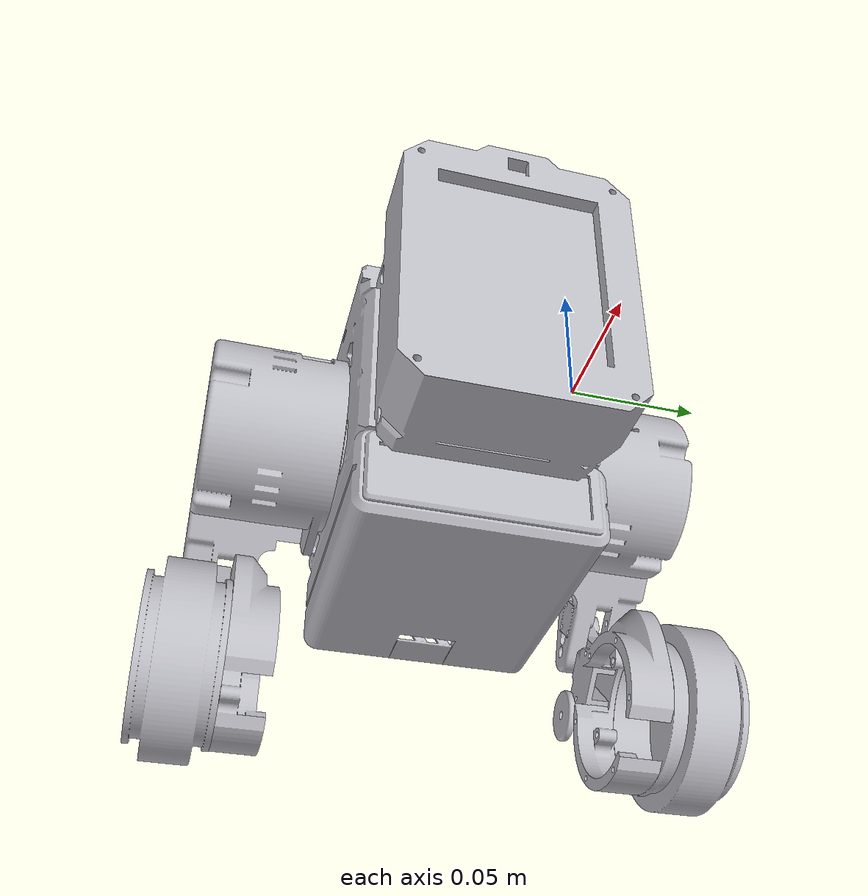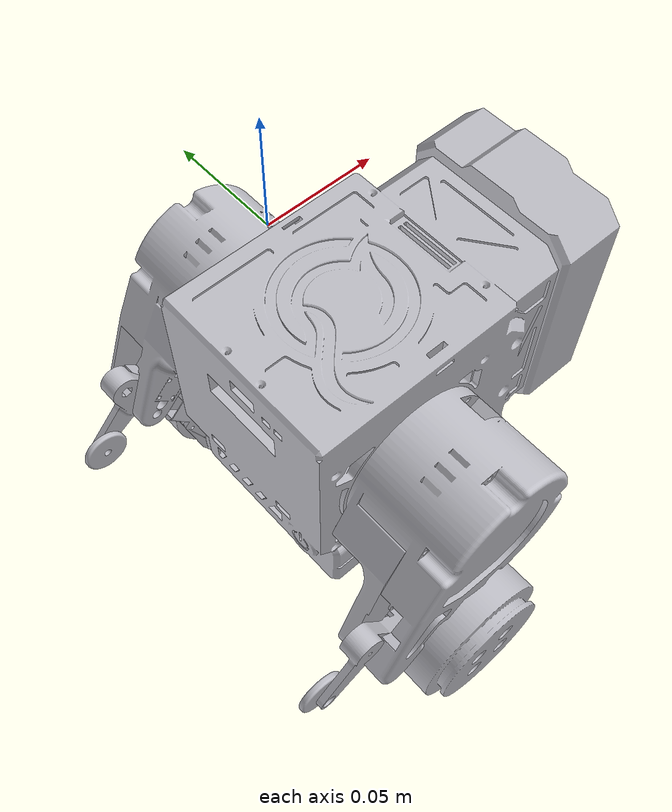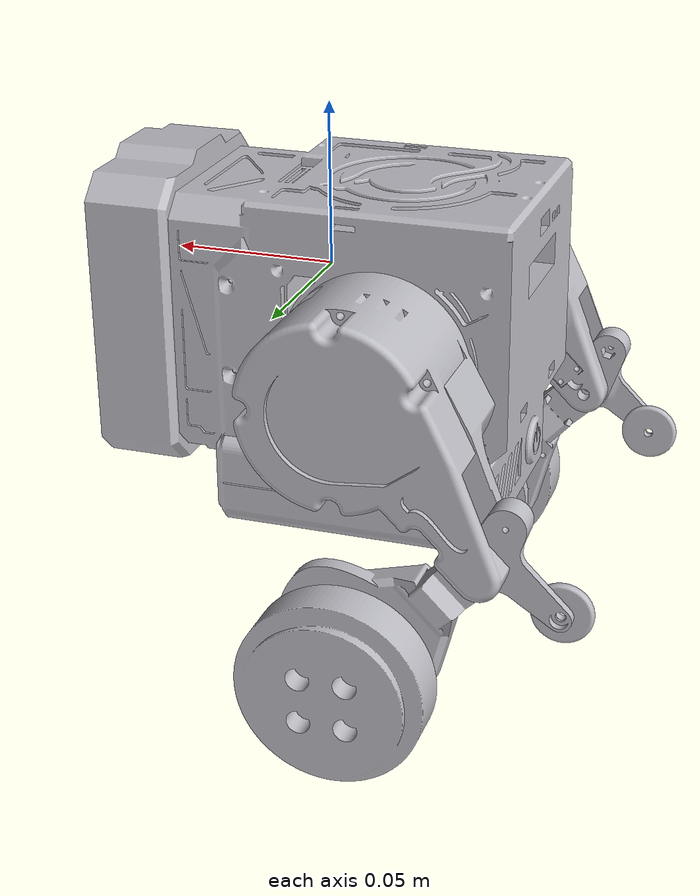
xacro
<?xml version="1.0" ?>
<robot name="urdf" xmlns:xacro="http://www.ros.org/wiki/xacro">

<xacro:include filename="$(find urdf_description)/urdf/materials.xacro" />
<xacro:include filename="$(find urdf_description)/urdf/urdf.trans" />
<xacro:include filename="$(find urdf_description)/urdf/urdf.gazebo" />
<link name="base_link">
  <inertial>
    <origin xyz="0.018646363702747377 -0.050238963083457974 -0.03448810722272746" rpy="0 0 0"/>
    <mass value="3.7060646010976246"/>
    <inertia ixx="0.006159" iyy="0.010744" izz="0.009145" ixy="3.9e-05" iyz="2.4e-05" ixz="0.000405"/>
  </inertial>
  <visual>
    <origin xyz="0 0 0" rpy="0 0 0"/>
    <geometry>
      <mesh filename="package://urdf_description/meshes/base_link.stl" scale="0.001 0.001 0.001"/>
    </geometry>
    <material name="silver"/>
  </visual>
  <collision>
    <origin xyz="0 0 0" rpy="0 0 0"/>
    <geometry>
      <mesh filename="package://urdf_description/meshes/base_link.stl" scale="0.001 0.001 0.001"/>
    </geometry>
  </collision>
</link>

<link name="right_shank_link_2">
  <inertial>
    <origin xyz="0.02726078501833474 0.001725902474211366 -0.023617590479721395" rpy="0 0 0"/>
    <mass value="0.13690405478687112"/>
    <inertia ixx="6.7e-05" iyy="0.000142" izz="8.3e-05" ixy="-1e-05" iyz="9e-06" ixz="3.9e-05"/>
  </inertial>
  <visual>
    <origin xyz="0.05692 0.118278 0.082426" rpy="0 0 0"/>
    <geometry>
      <mesh filename="package://urdf_description/meshes/right_shank_link_2.stl" scale="0.001 0.001 0.001"/>
    </geometry>
    <material name="silver"/>
  </visual>
  <collision>
    <origin xyz="0.05692 0.118278 0.082426" rpy="0 0 0"/>
    <geometry>
      <mesh filename="package://urdf_description/meshes/right_shank_link_2.stl" scale="0.001 0.001 0.001"/>
    </geometry>
  </collision>
</link>

<link name="right_idler_wheel_link_1">
  <inertial>
    <origin xyz="-1.0038416357882607e-07 0.0014996328545866106 1.4410162677003235e-07" rpy="0 0 0"/>
    <mass value="0.006977667939475657"/>
    <inertia ixx="0.0" iyy="0.0" izz="0.0" ixy="0.0" iyz="0.0" ixz="0.0"/>
  </inertial>
  <visual>
    <origin xyz="0.08032 0.120778 0.097803" rpy="0 0 0"/>
    <geometry>
      <mesh filename="package://urdf_description/meshes/right_idler_wheel_link_1.stl" scale="0.001 0.001 0.001"/>
    </geometry>
    <material name="silver"/>
  </visual>
  <collision>
    <origin xyz="0.08032 0.120778 0.097803" rpy="0 0 0"/>
    <geometry>
      <mesh filename="package://urdf_description/meshes/right_idler_wheel_link_1.stl" scale="0.001 0.001 0.001"/>
    </geometry>
  </collision>
</link>

<link name="left_thigh_link_1">
  <inertial>
    <origin xyz="-0.007841796871332999 0.02165217168425637 -0.0059609659700569015" rpy="0 0 0"/>
    <mass value="0.5276311266863356"/>
    <inertia ixx="0.000349" iyy="0.000501" izz="0.000384" ixy="1.9e-05" iyz="2.3e-05" ixz="-8.6e-05"/>
  </inertial>
  <visual>
    <origin xyz="0.010958 0.009778 0.036464" rpy="0 0 0"/>
    <geometry>
      <mesh filename="package://urdf_description/meshes/left_thigh_link_1.stl" scale="0.001 0.001 0.001"/>
    </geometry>
    <material name="silver"/>
  </visual>
  <collision>
    <origin xyz="0.010958 0.009778 0.036464" rpy="0 0 0"/>
    <geometry>
      <mesh filename="package://urdf_description/meshes/left_thigh_link_1.stl" scale="0.001 0.001 0.001"/>
    </geometry>
  </collision>
</link>

<link name="right_thigh_link_1">
  <inertial>
    <origin xyz="-0.007841714275215685 -0.02165293135789087 -0.005960949248683539" rpy="0 0 0"/>
    <mass value="0.5276303413431833"/>
    <inertia ixx="0.000349" iyy="0.000501" izz="0.000384" ixy="-1.9e-05" iyz="-2.3e-05" ixz="-8.6e-05"/>
  </inertial>
  <visual>
    <origin xyz="0.010958 0.089778 0.036464" rpy="0 0 0"/>
    <geometry>
      <mesh filename="package://urdf_description/meshes/right_thigh_link_1.stl" scale="0.001 0.001 0.001"/>
    </geometry>
    <material name="silver"/>
  </visual>
  <collision>
    <origin xyz="0.010958 0.089778 0.036464" rpy="0 0 0"/>
    <geometry>
      <mesh filename="package://urdf_description/meshes/right_thigh_link_1.stl" scale="0.001 0.001 0.001"/>
    </geometry>
  </collision>
</link>

<link name="right_wheel_link_1">
  <inertial>
    <origin xyz="-3.202629839157284e-07 -0.016535687827611528 5.3276764305776325e-08" rpy="0 0 0"/>
    <mass value="0.3218246856576583"/>
    <inertia ixx="9.8e-05" iyy="0.000175" izz="9.8e-05" ixy="-0.0" iyz="0.0" ixz="0.0"/>
  </inertial>
  <visual>
    <origin xyz="0.010958 0.120278 0.128388" rpy="0 0 0"/>
    <geometry>
      <mesh filename="package://urdf_description/meshes/right_wheel_link_1.stl" scale="0.001 0.001 0.001"/>
    </geometry>
    <material name="silver"/>
  </visual>
  <collision>
    <origin xyz="0.010958 0.120278 0.128388" rpy="0 0 0"/>
    <geometry>
      <mesh filename="package://urdf_description/meshes/right_wheel_link_1.stl" scale="0.001 0.001 0.001"/>
    </geometry>
  </collision>
</link>

<link name="left_shank_link_1">
  <inertial>
    <origin xyz="0.02726078501833793 -0.001726636765033391 -0.02361759047971776" rpy="0 0 0"/>
    <mass value="0.13690405478687123"/>
    <inertia ixx="6.7e-05" iyy="0.000142" izz="8.3e-05" ixy="1e-05" iyz="-9e-06" ixz="3.9e-05"/>
  </inertial>
  <visual>
    <origin xyz="0.05692 -0.018722 0.082426" rpy="0 0 0"/>
    <geometry>
      <mesh filename="package://urdf_description/meshes/left_shank_link_1.stl" scale="0.001 0.001 0.001"/>
    </geometry>
    <material name="silver"/>
  </visual>
  <collision>
    <origin xyz="0.05692 -0.018722 0.082426" rpy="0 0 0"/>
    <geometry>
      <mesh filename="package://urdf_description/meshes/left_shank_link_1.stl" scale="0.001 0.001 0.001"/>
    </geometry>
  </collision>
</link>

<link name="left_wheel_link_2">
  <inertial>
    <origin xyz="-3.202629778927685e-07 0.016534953536789413 5.327676680377813e-08" rpy="0 0 0"/>
    <mass value="0.3218246856576583"/>
    <inertia ixx="9.8e-05" iyy="0.000175" izz="9.8e-05" ixy="-0.0" iyz="-0.0" ixz="-0.0"/>
  </inertial>
  <visual>
    <origin xyz="0.010958 -0.020722 0.128388" rpy="0 0 0"/>
    <geometry>
      <mesh filename="package://urdf_description/meshes/left_wheel_link_2.stl" scale="0.001 0.001 0.001"/>
    </geometry>
    <material name="silver"/>
  </visual>
  <collision>
    <origin xyz="0.010958 -0.020722 0.128388" rpy="0 0 0"/>
    <geometry>
      <mesh filename="package://urdf_description/meshes/left_wheel_link_2.stl" scale="0.001 0.001 0.001"/>
    </geometry>
  </collision>
</link>

<link name="left_idler_wheel_link_2">
  <inertial>
    <origin xyz="-1.003841612612355e-07 -0.0015003671454090033 1.4410163112765773e-07" rpy="0 0 0"/>
    <mass value="0.006977667939475659"/>
    <inertia ixx="0.0" iyy="0.0" izz="0.0" ixy="0.0" iyz="0.0" ixz="0.0"/>
  </inertial>
  <visual>
    <origin xyz="0.08032 -0.021222 0.097803" rpy="0 0 0"/>
    <geometry>
      <mesh filename="package://urdf_description/meshes/left_idler_wheel_link_2.stl" scale="0.001 0.001 0.001"/>
    </geometry>
    <material name="silver"/>
  </visual>
  <collision>
    <origin xyz="0.08032 -0.021222 0.097803" rpy="0 0 0"/>
    <geometry>
      <mesh filename="package://urdf_description/meshes/left_idler_wheel_link_2.stl" scale="0.001 0.001 0.001"/>
    </geometry>
  </collision>
</link>

<joint name="right_knee_joint" type="revolute">
  <origin xyz="-0.045962 -0.0285 -0.045962" rpy="0 0 0"/>
  <parent link="right_thigh_link_1"/>
  <child link="right_shank_link_2"/>
  <axis xyz="0.0 -1.0 0.0"/>
  <limit upper="0.488692" lower="-0.436332" effort="100" velocity="100"/>
</joint>

<joint name="right_idler_wheel_joint" type="continuous">
  <origin xyz="-0.0234 -0.0025 -0.015377" rpy="0 0 0"/>
  <parent link="right_shank_link_2"/>
  <child link="right_idler_wheel_link_1"/>
  <axis xyz="-0.0 1.0 -0.0"/>
</joint>

<joint name="left_thigh_joint" type="continuous">
  <origin xyz="-0.010958 -0.009778 -0.036464" rpy="0 0 0"/>
  <parent link="base_link"/>
  <child link="left_thigh_link_1"/>
  <axis xyz="-0.0 1.0 -0.0"/>
</joint>

<joint name="right_thigh_joint" type="continuous">
  <origin xyz="-0.010958 -0.089778 -0.036464" rpy="0 0 0"/>
  <parent link="base_link"/>
  <child link="right_thigh_link_1"/>
  <axis xyz="-0.0 1.0 -0.0"/>
</joint>

<joint name="right_wheel_joint" type="continuous">
  <origin xyz="0.045962 -0.002 -0.045962" rpy="0 0 0"/>
  <parent link="right_shank_link_2"/>
  <child link="right_wheel_link_1"/>
  <axis xyz="0.0 -1.0 0.0"/>
</joint>

<joint name="left_knee_joint" type="revolute">
  <origin xyz="-0.045962 0.0285 -0.045962" rpy="0 0 0"/>
  <parent link="left_thigh_link_1"/>
  <child link="left_shank_link_1"/>
  <axis xyz="0.0 -1.0 0.0"/>
  <limit upper="0.488692" lower="-0.436332" effort="100" velocity="100"/>
</joint>

<joint name="left_wheel_joint" type="continuous">
  <origin xyz="0.045962 0.002 -0.045962" rpy="0 0 0"/>
  <parent link="left_shank_link_1"/>
  <child link="left_wheel_link_2"/>
  <axis xyz="0.0 -1.0 0.0"/>
</joint>

<joint name="left_idler_wheel_joint" type="continuous">
  <origin xyz="-0.0234 0.0025 -0.015377" rpy="0 0 0"/>
  <parent link="left_shank_link_1"/>
  <child link="left_idler_wheel_link_2"/>
  <axis xyz="-0.0 1.0 -0.0"/>
</joint>

</robot>

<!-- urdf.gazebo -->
<robot name="urdf" xmlns:xacro="http://www.ros.org/wiki/xacro" >

<xacro:property name="body_color" value="Gazebo/Silver" />

<gazebo>
  <plugin name="control" filename="libgazebo_ros_control.so"/>
</gazebo>
<gazebo reference="base_link">
  <material>${body_color}</material>
  <mu1>0.2</mu1>
  <mu2>0.2</mu2>
  <selfCollide>true</selfCollide>
  <gravity>true</gravity>
</gazebo>

<gazebo reference="right_shank_link_2">
  <material>${body_color}</material>
  <mu1>0.2</mu1>
  <mu2>0.2</mu2>
  <selfCollide>true</selfCollide>
</gazebo>

<gazebo reference="right_idler_wheel_link_1">
  <material>${body_color}</material>
  <mu1>0.2</mu1>
  <mu2>0.2</mu2>
  <selfCollide>true</selfCollide>
</gazebo>

<gazebo reference="left_thigh_link_1">
  <material>${body_color}</material>
  <mu1>0.2</mu1>
  <mu2>0.2</mu2>
  <selfCollide>true</selfCollide>
</gazebo>

<gazebo reference="right_thigh_link_1">
  <material>${body_color}</material>
  <mu1>0.2</mu1>
  <mu2>0.2</mu2>
  <selfCollide>true</selfCollide>
</gazebo>

<gazebo reference="right_wheel_link_1">
  <material>${body_color}</material>
  <mu1>0.2</mu1>
  <mu2>0.2</mu2>
  <selfCollide>true</selfCollide>
</gazebo>

<gazebo reference="left_shank_link_1">
  <material>${body_color}</material>
  <mu1>0.2</mu1>
  <mu2>0.2</mu2>
  <selfCollide>true</selfCollide>
</gazebo>

<gazebo reference="left_wheel_link_2">
  <material>${body_color}</material>
  <mu1>0.2</mu1>
  <mu2>0.2</mu2>
  <selfCollide>true</selfCollide>
</gazebo>

<gazebo reference="left_idler_wheel_link_2">
  <material>${body_color}</material>
  <mu1>0.2</mu1>
  <mu2>0.2</mu2>
  <selfCollide>true</selfCollide>
</gazebo>

</robot>
